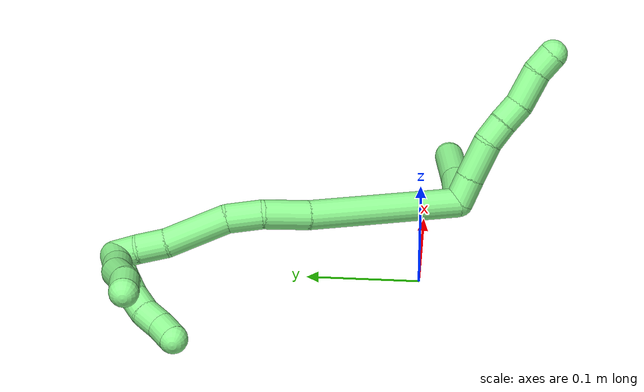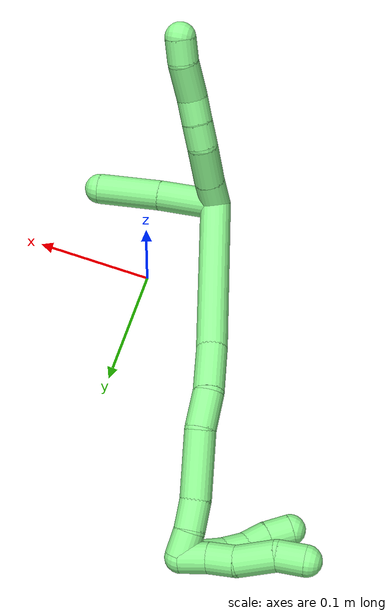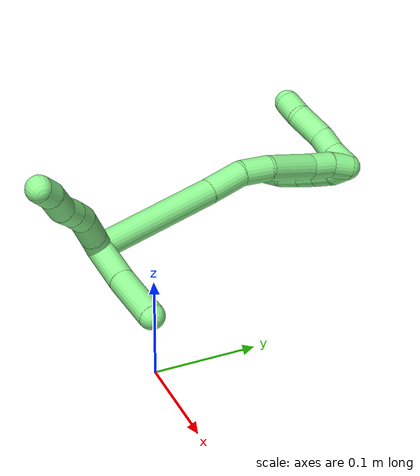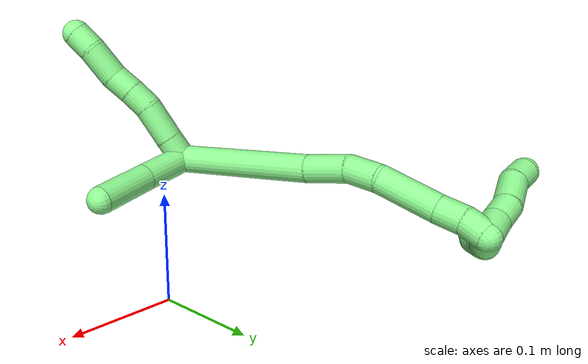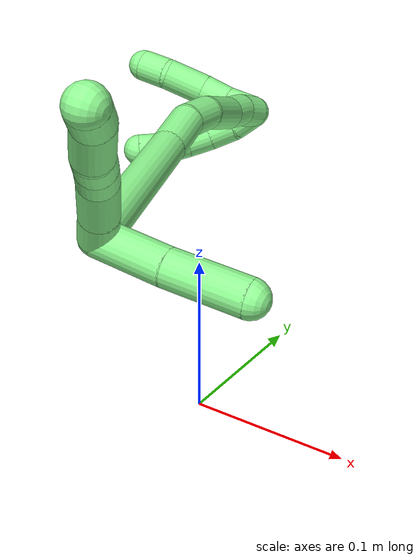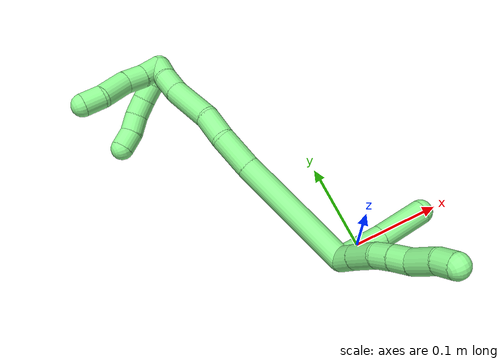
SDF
<sdf version="1.7">
 <world name="default">
  <model name="13">
   <static>0</static>
   <link name="13">
    <collision name="collision-cylinder-e_1_2_8">
     <pose>0.01119 0.002303 -0.002854 -2.46271 1.25413 -2.23472</pose>
     <geometry><cylinder><radius>0.0125</radius><length>0.023552</length></cylinder></geometry>
     <surface>
      <friction><ode><mu>1.16</mu><mu2>1.16</mu2><slip1>0</slip1><slip2>0</slip2></ode></friction>
      <contact><ode><kp>1e+06</kp><kd>1</kd><max_vel>0</max_vel><min_depth>0.001</min_depth></ode></contact>
     </surface>
    </collision>
    <visual name="visual-cylinder-e_1_2_8">
     <pose>0.01119 0.002303 -0.002854 -2.46271 1.25413 -2.23472</pose>
     <geometry><cylinder><radius>0.0125</radius><length>0.023552</length></cylinder></geometry>
     <material><ambient>0.564706 0.984314 0.572549 1</ambient></material>
    </visual>
    <collision name="collision-cylinder-e_2_8_9">
     <pose>0.038786 0.007695 -0.009064 -2.39743 1.29957 -2.19267</pose>
     <geometry><cylinder><radius>0.0125</radius><length>0.034056</length></cylinder></geometry>
     <surface>
      <friction><ode><mu>1.16</mu><mu2>1.16</mu2><slip1>0</slip1><slip2>0</slip2></ode></friction>
      <contact><ode><kp>1e+06</kp><kd>1</kd><max_vel>0</max_vel><min_depth>0.001</min_depth></ode></contact>
     </surface>
    </collision>
    <visual name="visual-cylinder-e_2_8_9">
     <pose>0.038786 0.007695 -0.009064 -2.39743 1.29957 -2.19267</pose>
     <geometry><cylinder><radius>0.0125</radius><length>0.034056</length></cylinder></geometry>
     <material><ambient>0.564706 0.984314 0.572549 1</ambient></material>
    </visual>
    <collision name="collision-cylinder-e_3_9_10">
     <pose>0.065018 0.010227 -0.015514 2.9629 1.26115 2.89737</pose>
     <geometry><cylinder><radius>0.0125</radius><length>0.020633</length></cylinder></geometry>
     <surface>
      <friction><ode><mu>1.16</mu><mu2>1.16</mu2><slip1>0</slip1><slip2>0</slip2></ode></friction>
      <contact><ode><kp>1e+06</kp><kd>1</kd><max_vel>0</max_vel><min_depth>0.001</min_depth></ode></contact>
     </surface>
    </collision>
    <visual name="visual-cylinder-e_3_9_10">
     <pose>0.065018 0.010227 -0.015514 2.9629 1.26115 2.89737</pose>
     <geometry><cylinder><radius>0.0125</radius><length>0.020633</length></cylinder></geometry>
     <material><ambient>0.564706 0.984314 0.572549 1</ambient></material>
    </visual>
    <collision name="collision-cylinder-e_4_10_11">
     <pose>0.084576 0.008357 -0.021833 2.75567 1.22717 2.60032</pose>
     <geometry><cylinder><radius>0.0125</radius><length>0.020672</length></cylinder></geometry>
     <surface>
      <friction><ode><mu>1.16</mu><mu2>1.16</mu2><slip1>0</slip1><slip2>0</slip2></ode></friction>
      <contact><ode><kp>1e+06</kp><kd>1</kd><max_vel>0</max_vel><min_depth>0.001</min_depth></ode></contact>
     </surface>
    </collision>
    <visual name="visual-cylinder-e_4_10_11">
     <pose>0.084576 0.008357 -0.021833 2.75567 1.22717 2.60032</pose>
     <geometry><cylinder><radius>0.0125</radius><length>0.020672</length></cylinder></geometry>
     <material><ambient>0.564706 0.984314 0.572549 1</ambient></material>
    </visual>
    <collision name="collision-cylinder-e_5_11_12">
     <pose>0.109135 0.008955 -0.029225 -2.71183 1.27108 -2.56624</pose>
     <geometry><cylinder><radius>0.0125</radius><length>0.031038</length></cylinder></geometry>
     <surface>
      <friction><ode><mu>1.16</mu><mu2>1.16</mu2><slip1>0</slip1><slip2>0</slip2></ode></friction>
      <contact><ode><kp>1e+06</kp><kd>1</kd><max_vel>0</max_vel><min_depth>0.001</min_depth></ode></contact>
     </surface>
    </collision>
    <visual name="visual-cylinder-e_5_11_12">
     <pose>0.109135 0.008955 -0.029225 -2.71183 1.27108 -2.56624</pose>
     <geometry><cylinder><radius>0.0125</radius><length>0.031038</length></cylinder></geometry>
     <material><ambient>0.564706 0.984314 0.572549 1</ambient></material>
    </visual>
    <collision name="collision-cylinder-e_6_12_6">
     <pose>0.133692 0.009812 -0.03556 2.68997 1.32786 2.57042</pose>
     <geometry><cylinder><radius>0.0125</radius><length>0.020048</length></cylinder></geometry>
     <surface>
      <friction><ode><mu>1.16</mu><mu2>1.16</mu2><slip1>0</slip1><slip2>0</slip2></ode></friction>
      <contact><ode><kp>1e+06</kp><kd>1</kd><max_vel>0</max_vel><min_depth>0.001</min_depth></ode></contact>
     </surface>
    </collision>
    <visual name="visual-cylinder-e_6_12_6">
     <pose>0.133692 0.009812 -0.03556 2.68997 1.32786 2.57042</pose>
     <geometry><cylinder><radius>0.0125</radius><length>0.020048</length></cylinder></geometry>
     <material><ambient>0.564706 0.984314 0.572549 1</ambient></material>
    </visual>
    <collision name="collision-cylinder-e_1_2_13">
     <pose>-0.00089 -0.00014 -0.023936 3.13576 -0.037176 -2.83025</pose>
     <geometry><cylinder><radius>0.0125</radius><length>0.047906</length></cylinder></geometry>
     <surface>
      <friction><ode><mu>1.16</mu><mu2>1.16</mu2><slip1>0</slip1><slip2>0</slip2></ode></friction>
      <contact><ode><kp>1e+06</kp><kd>1</kd><max_vel>0</max_vel><min_depth>0.001</min_depth></ode></contact>
     </surface>
    </collision>
    <visual name="visual-cylinder-e_1_2_13">
     <pose>-0.00089 -0.00014 -0.023936 3.13576 -0.037176 -2.83025</pose>
     <geometry><cylinder><radius>0.0125</radius><length>0.047906</length></cylinder></geometry>
     <material><ambient>0.564706 0.984314 0.572549 1</ambient></material>
    </visual>
    <collision name="collision-cylinder-e_2_13_5">
     <pose>-0.003329 0.001128 -0.073835 -3.08744 -0.059467 1.6643</pose>
     <geometry><cylinder><radius>0.0125</radius><length>0.052094</length></cylinder></geometry>
     <surface>
      <friction><ode><mu>1.16</mu><mu2>1.16</mu2><slip1>0</slip1><slip2>0</slip2></ode></friction>
      <contact><ode><kp>1e+06</kp><kd>1</kd><max_vel>0</max_vel><min_depth>0.001</min_depth></ode></contact>
     </surface>
    </collision>
    <visual name="visual-cylinder-e_2_13_5">
     <pose>-0.003329 0.001128 -0.073835 -3.08744 -0.059467 1.6643</pose>
     <geometry><cylinder><radius>0.0125</radius><length>0.052094</length></cylinder></geometry>
     <material><ambient>0.564706 0.984314 0.572549 1</ambient></material>
    </visual>
    <collision name="collision-cylinder-e_1_2_14">
     <pose>-0.036509 0.05171 0.015714 -1.27578 -0.59412 0.446274</pose>
     <geometry><cylinder><radius>0.0125</radius><length>0.130441</length></cylinder></geometry>
     <surface>
      <friction><ode><mu>1.16</mu><mu2>1.16</mu2><slip1>0</slip1><slip2>0</slip2></ode></friction>
      <contact><ode><kp>1e+06</kp><kd>1</kd><max_vel>0</max_vel><min_depth>0.001</min_depth></ode></contact>
     </surface>
    </collision>
    <visual name="visual-cylinder-e_1_2_14">
     <pose>-0.036509 0.05171 0.015714 -1.27578 -0.59412 0.446274</pose>
     <geometry><cylinder><radius>0.0125</radius><length>0.130441</length></cylinder></geometry>
     <material><ambient>0.564706 0.984314 0.572549 1</ambient></material>
    </visual>
    <collision name="collision-cylinder-e_2_14_15">
     <pose>-0.08249 0.120052 0.03546 -1.33296 -0.505455 0.400796</pose>
     <geometry><cylinder><radius>0.0125</radius><length>0.039122</length></cylinder></geometry>
     <surface>
      <friction><ode><mu>1.16</mu><mu2>1.16</mu2><slip1>0</slip1><slip2>0</slip2></ode></friction>
      <contact><ode><kp>1e+06</kp><kd>1</kd><max_vel>0</max_vel><min_depth>0.001</min_depth></ode></contact>
     </surface>
    </collision>
    <visual name="visual-cylinder-e_2_14_15">
     <pose>-0.08249 0.120052 0.03546 -1.33296 -0.505455 0.400796</pose>
     <geometry><cylinder><radius>0.0125</radius><length>0.039122</length></cylinder></geometry>
     <material><ambient>0.564706 0.984314 0.572549 1</ambient></material>
    </visual>
    <collision name="collision-cylinder-e_3_15_16">
     <pose>-0.102365 0.147642 0.040078 -1.51735 -0.758828 0.722748</pose>
     <geometry><cylinder><radius>0.0125</radius><length>0.030241</length></cylinder></geometry>
     <surface>
      <friction><ode><mu>1.16</mu><mu2>1.16</mu2><slip1>0</slip1><slip2>0</slip2></ode></friction>
      <contact><ode><kp>1e+06</kp><kd>1</kd><max_vel>0</max_vel><min_depth>0.001</min_depth></ode></contact>
     </surface>
    </collision>
    <visual name="visual-cylinder-e_3_15_16">
     <pose>-0.102365 0.147642 0.040078 -1.51735 -0.758828 0.722748</pose>
     <geometry><cylinder><radius>0.0125</radius><length>0.030241</length></cylinder></geometry>
     <material><ambient>0.564706 0.984314 0.572549 1</ambient></material>
    </visual>
    <collision name="collision-cylinder-e_4_16_17">
     <pose>-0.13532 0.173164 0.044613 -1.30609 -0.981031 0.775729</pose>
     <geometry><cylinder><radius>0.0125</radius><length>0.054268</length></cylinder></geometry>
     <surface>
      <friction><ode><mu>1.16</mu><mu2>1.16</mu2><slip1>0</slip1><slip2>0</slip2></ode></friction>
      <contact><ode><kp>1e+06</kp><kd>1</kd><max_vel>0</max_vel><min_depth>0.001</min_depth></ode></contact>
     </surface>
    </collision>
    <visual name="visual-cylinder-e_4_16_17">
     <pose>-0.13532 0.173164 0.044613 -1.30609 -0.981031 0.775729</pose>
     <geometry><cylinder><radius>0.0125</radius><length>0.054268</length></cylinder></geometry>
     <material><ambient>0.564706 0.984314 0.572549 1</ambient></material>
    </visual>
    <collision name="collision-cylinder-e_5_17_18">
     <pose>-0.167116 0.1958 0.049033 -1.51238 -0.852319 0.809164</pose>
     <geometry><cylinder><radius>0.0125</radius><length>0.024564</length></cylinder></geometry>
     <surface>
      <friction><ode><mu>1.16</mu><mu2>1.16</mu2><slip1>0</slip1><slip2>0</slip2></ode></friction>
      <contact><ode><kp>1e+06</kp><kd>1</kd><max_vel>0</max_vel><min_depth>0.001</min_depth></ode></contact>
     </surface>
    </collision>
    <visual name="visual-cylinder-e_5_17_18">
     <pose>-0.167116 0.1958 0.049033 -1.51238 -0.852319 0.809164</pose>
     <geometry><cylinder><radius>0.0125</radius><length>0.024564</length></cylinder></geometry>
     <material><ambient>0.564706 0.984314 0.572549 1</ambient></material>
    </visual>
    <collision name="collision-cylinder-e_6_18_1">
     <pose>-0.185194 0.209749 0.048266 -1.77846 -0.97346 1.15601</pose>
     <geometry><cylinder><radius>0.0125</radius><length>0.021364</length></cylinder></geometry>
     <surface>
      <friction><ode><mu>1.16</mu><mu2>1.16</mu2><slip1>0</slip1><slip2>0</slip2></ode></friction>
      <contact><ode><kp>1e+06</kp><kd>1</kd><max_vel>0</max_vel><min_depth>0.001</min_depth></ode></contact>
     </surface>
    </collision>
    <visual name="visual-cylinder-e_6_18_1">
     <pose>-0.185194 0.209749 0.048266 -1.77846 -0.97346 1.15601</pose>
     <geometry><cylinder><radius>0.0125</radius><length>0.021364</length></cylinder></geometry>
     <material><ambient>0.564706 0.984314 0.572549 1</ambient></material>
    </visual>
    <collision name="collision-cylinder-e_1_1_19">
     <pose>-0.191695 0.214676 0.058131 0.085595 0.206212 0.008862</pose>
     <geometry><cylinder><radius>0.0125</radius><length>0.022772</length></cylinder></geometry>
     <surface>
      <friction><ode><mu>1.16</mu><mu2>1.16</mu2><slip1>0</slip1><slip2>0</slip2></ode></friction>
      <contact><ode><kp>1e+06</kp><kd>1</kd><max_vel>0</max_vel><min_depth>0.001</min_depth></ode></contact>
     </surface>
    </collision>
    <visual name="visual-cylinder-e_1_1_19">
     <pose>-0.191695 0.214676 0.058131 0.085595 0.206212 0.008862</pose>
     <geometry><cylinder><radius>0.0125</radius><length>0.022772</length></cylinder></geometry>
     <material><ambient>0.564706 0.984314 0.572549 1</ambient></material>
    </visual>
    <collision name="collision-cylinder-e_2_19_20">
     <pose>-0.187297 0.214484 0.08021 -0.069257 0.18571 -0.006452</pose>
     <geometry><cylinder><radius>0.0125</radius><length>0.022387</length></cylinder></geometry>
     <surface>
      <friction><ode><mu>1.16</mu><mu2>1.16</mu2><slip1>0</slip1><slip2>0</slip2></ode></friction>
      <contact><ode><kp>1e+06</kp><kd>1</kd><max_vel>0</max_vel><min_depth>0.001</min_depth></ode></contact>
     </surface>
    </collision>
    <visual name="visual-cylinder-e_2_19_20">
     <pose>-0.187297 0.214484 0.08021 -0.069257 0.18571 -0.006452</pose>
     <geometry><cylinder><radius>0.0125</radius><length>0.022387</length></cylinder></geometry>
     <material><ambient>0.564706 0.984314 0.572549 1</ambient></material>
    </visual>
    <collision name="collision-cylinder-e_3_20_21">
     <pose>-0.179141 0.213633 0.106203 0.106925 0.383182 0.020759</pose>
     <geometry><cylinder><radius>0.0125</radius><length>0.032572</length></cylinder></geometry>
     <surface>
      <friction><ode><mu>1.16</mu><mu2>1.16</mu2><slip1>0</slip1><slip2>0</slip2></ode></friction>
      <contact><ode><kp>1e+06</kp><kd>1</kd><max_vel>0</max_vel><min_depth>0.001</min_depth></ode></contact>
     </surface>
    </collision>
    <visual name="visual-cylinder-e_3_20_21">
     <pose>-0.179141 0.213633 0.106203 0.106925 0.383182 0.020759</pose>
     <geometry><cylinder><radius>0.0125</radius><length>0.032572</length></cylinder></geometry>
     <material><ambient>0.564706 0.984314 0.572549 1</ambient></material>
    </visual>
    <collision name="collision-cylinder-e_4_21_4">
     <pose>-0.172345 0.211966 0.132333 0.004979 0.063588 0.000158</pose>
     <geometry><cylinder><radius>0.0125</radius><length>0.02227</length></cylinder></geometry>
     <surface>
      <friction><ode><mu>1.16</mu><mu2>1.16</mu2><slip1>0</slip1><slip2>0</slip2></ode></friction>
      <contact><ode><kp>1e+06</kp><kd>1</kd><max_vel>0</max_vel><min_depth>0.001</min_depth></ode></contact>
     </surface>
    </collision>
    <visual name="visual-cylinder-e_4_21_4">
     <pose>-0.172345 0.211966 0.132333 0.004979 0.063588 0.000158</pose>
     <geometry><cylinder><radius>0.0125</radius><length>0.02227</length></cylinder></geometry>
     <material><ambient>0.564706 0.984314 0.572549 1</ambient></material>
    </visual>
    <collision name="collision-cylinder-e_1_1_22">
     <pose>-0.19694 0.208268 0.053137 0.877987 -0.295697 -0.139638</pose>
     <geometry><cylinder><radius>0.0125</radius><length>0.02</length></cylinder></geometry>
     <surface>
      <friction><ode><mu>1.16</mu><mu2>1.16</mu2><slip1>0</slip1><slip2>0</slip2></ode></friction>
      <contact><ode><kp>1e+06</kp><kd>1</kd><max_vel>0</max_vel><min_depth>0.001</min_depth></ode></contact>
     </surface>
    </collision>
    <visual name="visual-cylinder-e_1_1_22">
     <pose>-0.19694 0.208268 0.053137 0.877987 -0.295697 -0.139638</pose>
     <geometry><cylinder><radius>0.0125</radius><length>0.02</length></cylinder></geometry>
     <material><ambient>0.564706 0.984314 0.572549 1</ambient></material>
    </visual>
    <collision name="collision-cylinder-e_2_22_23">
     <pose>-0.201478 0.194468 0.066724 0.710906 -0.163078 -0.060654</pose>
     <geometry><cylinder><radius>0.0125</radius><length>0.02</length></cylinder></geometry>
     <surface>
      <friction><ode><mu>1.16</mu><mu2>1.16</mu2><slip1>0</slip1><slip2>0</slip2></ode></friction>
      <contact><ode><kp>1e+06</kp><kd>1</kd><max_vel>0</max_vel><min_depth>0.001</min_depth></ode></contact>
     </surface>
    </collision>
    <visual name="visual-cylinder-e_2_22_23">
     <pose>-0.201478 0.194468 0.066724 0.710906 -0.163078 -0.060654</pose>
     <geometry><cylinder><radius>0.0125</radius><length>0.02</length></cylinder></geometry>
     <material><ambient>0.564706 0.984314 0.572549 1</ambient></material>
    </visual>
    <collision name="collision-cylinder-e_3_23_24">
     <pose>-0.203175 0.1813 0.081598 0.738218 -0.007294 -0.002822</pose>
     <geometry><cylinder><radius>0.0125</radius><length>0.02</length></cylinder></geometry>
     <surface>
      <friction><ode><mu>1.16</mu><mu2>1.16</mu2><slip1>0</slip1><slip2>0</slip2></ode></friction>
      <contact><ode><kp>1e+06</kp><kd>1</kd><max_vel>0</max_vel><min_depth>0.001</min_depth></ode></contact>
     </surface>
    </collision>
    <visual name="visual-cylinder-e_3_23_24">
     <pose>-0.203175 0.1813 0.081598 0.738218 -0.007294 -0.002822</pose>
     <geometry><cylinder><radius>0.0125</radius><length>0.02</length></cylinder></geometry>
     <material><ambient>0.564706 0.984314 0.572549 1</ambient></material>
    </visual>
    <collision name="collision-cylinder-e_4_24_25">
     <pose>-0.201227 0.167324 0.095582 0.833008 0.20346 0.090258</pose>
     <geometry><cylinder><radius>0.0125</radius><length>0.02</length></cylinder></geometry>
     <surface>
      <friction><ode><mu>1.16</mu><mu2>1.16</mu2><slip1>0</slip1><slip2>0</slip2></ode></friction>
      <contact><ode><kp>1e+06</kp><kd>1</kd><max_vel>0</max_vel><min_depth>0.001</min_depth></ode></contact>
     </surface>
    </collision>
    <visual name="visual-cylinder-e_4_24_25">
     <pose>-0.201227 0.167324 0.095582 0.833008 0.20346 0.090258</pose>
     <geometry><cylinder><radius>0.0125</radius><length>0.02</length></cylinder></geometry>
     <material><ambient>0.564706 0.984314 0.572549 1</ambient></material>
    </visual>
    <collision name="collision-cylinder-e_5_25_3">
     <pose>-0.197185 0.15477 0.110401 0.572639 0.203532 0.060111</pose>
     <geometry><cylinder><radius>0.0125</radius><length>0.02</length></cylinder></geometry>
     <surface>
      <friction><ode><mu>1.16</mu><mu2>1.16</mu2><slip1>0</slip1><slip2>0</slip2></ode></friction>
      <contact><ode><kp>1e+06</kp><kd>1</kd><max_vel>0</max_vel><min_depth>0.001</min_depth></ode></contact>
     </surface>
    </collision>
    <visual name="visual-cylinder-e_5_25_3">
     <pose>-0.197185 0.15477 0.110401 0.572639 0.203532 0.060111</pose>
     <geometry><cylinder><radius>0.0125</radius><length>0.02</length></cylinder></geometry>
     <material><ambient>0.564706 0.984314 0.572549 1</ambient></material>
    </visual>
    <collision name="collision-sphere-3">
     <pose>-0.195164 0.149464 0.118632 0 -0 0</pose>
     <geometry><sphere><radius>0.0125</radius></sphere></geometry>
     <surface>
      <friction><ode><mu>1.16</mu><mu2>1.16</mu2><slip1>0</slip1><slip2>0</slip2></ode></friction>
      <contact><ode><kp>1e+06</kp><kd>1</kd><max_vel>0</max_vel><min_depth>0.001</min_depth></ode></contact>
     </surface>
    </collision>
    <visual name="visual-sphere-3">
     <pose>-0.195164 0.149464 0.118632 0 -0 0</pose>
     <geometry><sphere><radius>0.0125</radius></sphere></geometry>
     <material><ambient>0.564706 0.984314 0.572549 1</ambient></material>
    </visual>
    <collision name="collision-sphere-25">
     <pose>-0.199206 0.160077 0.10217 0 -0 0</pose>
     <geometry><sphere><radius>0.0125</radius></sphere></geometry>
     <surface>
      <friction><ode><mu>1.16</mu><mu2>1.16</mu2><slip1>0</slip1><slip2>0</slip2></ode></friction>
      <contact><ode><kp>1e+06</kp><kd>1</kd><max_vel>0</max_vel><min_depth>0.001</min_depth></ode></contact>
     </surface>
    </collision>
    <visual name="visual-sphere-25">
     <pose>-0.199206 0.160077 0.10217 0 -0 0</pose>
     <geometry><sphere><radius>0.0125</radius></sphere></geometry>
     <material><ambient>0.564706 0.984314 0.572549 1</ambient></material>
    </visual>
    <collision name="collision-sphere-24">
     <pose>-0.203248 0.174571 0.088994 0 -0 0</pose>
     <geometry><sphere><radius>0.0125</radius></sphere></geometry>
     <surface>
      <friction><ode><mu>1.16</mu><mu2>1.16</mu2><slip1>0</slip1><slip2>0</slip2></ode></friction>
      <contact><ode><kp>1e+06</kp><kd>1</kd><max_vel>0</max_vel><min_depth>0.001</min_depth></ode></contact>
     </surface>
    </collision>
    <visual name="visual-sphere-24">
     <pose>-0.203248 0.174571 0.088994 0 -0 0</pose>
     <geometry><sphere><radius>0.0125</radius></sphere></geometry>
     <material><ambient>0.564706 0.984314 0.572549 1</ambient></material>
    </visual>
    <collision name="collision-sphere-23">
     <pose>-0.203102 0.18803 0.074201 0 -0 0</pose>
     <geometry><sphere><radius>0.0125</radius></sphere></geometry>
     <surface>
      <friction><ode><mu>1.16</mu><mu2>1.16</mu2><slip1>0</slip1><slip2>0</slip2></ode></friction>
      <contact><ode><kp>1e+06</kp><kd>1</kd><max_vel>0</max_vel><min_depth>0.001</min_depth></ode></contact>
     </surface>
    </collision>
    <visual name="visual-sphere-23">
     <pose>-0.203102 0.18803 0.074201 0 -0 0</pose>
     <geometry><sphere><radius>0.0125</radius></sphere></geometry>
     <material><ambient>0.564706 0.984314 0.572549 1</ambient></material>
    </visual>
    <collision name="collision-sphere-22">
     <pose>-0.199855 0.200907 0.059247 0 -0 0</pose>
     <geometry><sphere><radius>0.0125</radius></sphere></geometry>
     <surface>
      <friction><ode><mu>1.16</mu><mu2>1.16</mu2><slip1>0</slip1><slip2>0</slip2></ode></friction>
      <contact><ode><kp>1e+06</kp><kd>1</kd><max_vel>0</max_vel><min_depth>0.001</min_depth></ode></contact>
     </surface>
    </collision>
    <visual name="visual-sphere-22">
     <pose>-0.199855 0.200907 0.059247 0 -0 0</pose>
     <geometry><sphere><radius>0.0125</radius></sphere></geometry>
     <material><ambient>0.564706 0.984314 0.572549 1</ambient></material>
    </visual>
    <collision name="collision-sphere-4">
     <pose>-0.171637 0.211911 0.143446 0 -0 0</pose>
     <geometry><sphere><radius>0.0125</radius></sphere></geometry>
     <surface>
      <friction><ode><mu>1.16</mu><mu2>1.16</mu2><slip1>0</slip1><slip2>0</slip2></ode></friction>
      <contact><ode><kp>1e+06</kp><kd>1</kd><max_vel>0</max_vel><min_depth>0.001</min_depth></ode></contact>
     </surface>
    </collision>
    <visual name="visual-sphere-4">
     <pose>-0.171637 0.211911 0.143446 0 -0 0</pose>
     <geometry><sphere><radius>0.0125</radius></sphere></geometry>
     <material><ambient>0.564706 0.984314 0.572549 1</ambient></material>
    </visual>
    <collision name="collision-sphere-21">
     <pose>-0.173053 0.212021 0.121221 0 -0 0</pose>
     <geometry><sphere><radius>0.0125</radius></sphere></geometry>
     <surface>
      <friction><ode><mu>1.16</mu><mu2>1.16</mu2><slip1>0</slip1><slip2>0</slip2></ode></friction>
      <contact><ode><kp>1e+06</kp><kd>1</kd><max_vel>0</max_vel><min_depth>0.001</min_depth></ode></contact>
     </surface>
    </collision>
    <visual name="visual-sphere-21">
     <pose>-0.173053 0.212021 0.121221 0 -0 0</pose>
     <geometry><sphere><radius>0.0125</radius></sphere></geometry>
     <material><ambient>0.564706 0.984314 0.572549 1</ambient></material>
    </visual>
    <collision name="collision-sphere-20">
     <pose>-0.18523 0.215245 0.091184 0 -0 0</pose>
     <geometry><sphere><radius>0.0125</radius></sphere></geometry>
     <surface>
      <friction><ode><mu>1.16</mu><mu2>1.16</mu2><slip1>0</slip1><slip2>0</slip2></ode></friction>
      <contact><ode><kp>1e+06</kp><kd>1</kd><max_vel>0</max_vel><min_depth>0.001</min_depth></ode></contact>
     </surface>
    </collision>
    <visual name="visual-sphere-20">
     <pose>-0.18523 0.215245 0.091184 0 -0 0</pose>
     <geometry><sphere><radius>0.0125</radius></sphere></geometry>
     <material><ambient>0.564706 0.984314 0.572549 1</ambient></material>
    </visual>
    <collision name="collision-sphere-12">
     <pose>0.123962 0.010865 -0.03339 0 -0 0</pose>
     <geometry><sphere><radius>0.0125</radius></sphere></geometry>
     <surface>
      <friction><ode><mu>1.16</mu><mu2>1.16</mu2><slip1>0</slip1><slip2>0</slip2></ode></friction>
      <contact><ode><kp>1e+06</kp><kd>1</kd><max_vel>0</max_vel><min_depth>0.001</min_depth></ode></contact>
     </surface>
    </collision>
    <visual name="visual-sphere-12">
     <pose>0.123962 0.010865 -0.03339 0 -0 0</pose>
     <geometry><sphere><radius>0.0125</radius></sphere></geometry>
     <material><ambient>0.564706 0.984314 0.572549 1</ambient></material>
    </visual>
    <collision name="collision-sphere-11">
     <pose>0.094308 0.007046 -0.02506 0 -0 0</pose>
     <geometry><sphere><radius>0.0125</radius></sphere></geometry>
     <surface>
      <friction><ode><mu>1.16</mu><mu2>1.16</mu2><slip1>0</slip1><slip2>0</slip2></ode></friction>
      <contact><ode><kp>1e+06</kp><kd>1</kd><max_vel>0</max_vel><min_depth>0.001</min_depth></ode></contact>
     </surface>
    </collision>
    <visual name="visual-sphere-11">
     <pose>0.094308 0.007046 -0.02506 0 -0 0</pose>
     <geometry><sphere><radius>0.0125</radius></sphere></geometry>
     <material><ambient>0.564706 0.984314 0.572549 1</ambient></material>
    </visual>
    <collision name="collision-sphere-10">
     <pose>0.074844 0.009668 -0.018607 0 -0 0</pose>
     <geometry><sphere><radius>0.0125</radius></sphere></geometry>
     <surface>
      <friction><ode><mu>1.16</mu><mu2>1.16</mu2><slip1>0</slip1><slip2>0</slip2></ode></friction>
      <contact><ode><kp>1e+06</kp><kd>1</kd><max_vel>0</max_vel><min_depth>0.001</min_depth></ode></contact>
     </surface>
    </collision>
    <visual name="visual-sphere-10">
     <pose>0.074844 0.009668 -0.018607 0 -0 0</pose>
     <geometry><sphere><radius>0.0125</radius></sphere></geometry>
     <material><ambient>0.564706 0.984314 0.572549 1</ambient></material>
    </visual>
    <collision name="collision-sphere-9">
     <pose>0.055192 0.010785 -0.01242 0 -0 0</pose>
     <geometry><sphere><radius>0.0125</radius></sphere></geometry>
     <surface>
      <friction><ode><mu>1.16</mu><mu2>1.16</mu2><slip1>0</slip1><slip2>0</slip2></ode></friction>
      <contact><ode><kp>1e+06</kp><kd>1</kd><max_vel>0</max_vel><min_depth>0.001</min_depth></ode></contact>
     </surface>
    </collision>
    <visual name="visual-sphere-9">
     <pose>0.055192 0.010785 -0.01242 0 -0 0</pose>
     <geometry><sphere><radius>0.0125</radius></sphere></geometry>
     <material><ambient>0.564706 0.984314 0.572549 1</ambient></material>
    </visual>
    <collision name="collision-sphere-2">
     <geometry><sphere><radius>0.0125</radius></sphere></geometry>
     <surface>
      <friction><ode><mu>1.16</mu><mu2>1.16</mu2><slip1>0</slip1><slip2>0</slip2></ode></friction>
      <contact><ode><kp>1e+06</kp><kd>1</kd><max_vel>0</max_vel><min_depth>0.001</min_depth></ode></contact>
     </surface>
    </collision>
    <visual name="visual-sphere-2">
     <geometry><sphere><radius>0.0125</radius></sphere></geometry>
     <material><ambient>0.564706 0.984314 0.572549 1</ambient></material>
    </visual>
    <collision name="collision-sphere-19">
     <pose>-0.189364 0.213723 0.069235 0 -0 0</pose>
     <geometry><sphere><radius>0.0125</radius></sphere></geometry>
     <surface>
      <friction><ode><mu>1.16</mu><mu2>1.16</mu2><slip1>0</slip1><slip2>0</slip2></ode></friction>
      <contact><ode><kp>1e+06</kp><kd>1</kd><max_vel>0</max_vel><min_depth>0.001</min_depth></ode></contact>
     </surface>
    </collision>
    <visual name="visual-sphere-19">
     <pose>-0.189364 0.213723 0.069235 0 -0 0</pose>
     <geometry><sphere><radius>0.0125</radius></sphere></geometry>
     <material><ambient>0.564706 0.984314 0.572549 1</ambient></material>
    </visual>
    <collision name="collision-sphere-8">
     <pose>0.022381 0.004605 -0.005708 0 -0 0</pose>
     <geometry><sphere><radius>0.0125</radius></sphere></geometry>
     <surface>
      <friction><ode><mu>1.16</mu><mu2>1.16</mu2><slip1>0</slip1><slip2>0</slip2></ode></friction>
      <contact><ode><kp>1e+06</kp><kd>1</kd><max_vel>0</max_vel><min_depth>0.001</min_depth></ode></contact>
     </surface>
    </collision>
    <visual name="visual-sphere-8">
     <pose>0.022381 0.004605 -0.005708 0 -0 0</pose>
     <geometry><sphere><radius>0.0125</radius></sphere></geometry>
     <material><ambient>0.564706 0.984314 0.572549 1</ambient></material>
    </visual>
    <collision name="collision-sphere-6">
     <pose>0.143422 0.00876 -0.037729 0 -0 0</pose>
     <geometry><sphere><radius>0.0125</radius></sphere></geometry>
     <surface>
      <friction><ode><mu>1.16</mu><mu2>1.16</mu2><slip1>0</slip1><slip2>0</slip2></ode></friction>
      <contact><ode><kp>1e+06</kp><kd>1</kd><max_vel>0</max_vel><min_depth>0.001</min_depth></ode></contact>
     </surface>
    </collision>
    <visual name="visual-sphere-6">
     <pose>0.143422 0.00876 -0.037729 0 -0 0</pose>
     <geometry><sphere><radius>0.0125</radius></sphere></geometry>
     <material><ambient>0.564706 0.984314 0.572549 1</ambient></material>
    </visual>
    <collision name="collision-sphere-13">
     <pose>-0.001781 -0.000279 -0.047872 0 -0 0</pose>
     <geometry><sphere><radius>0.0125</radius></sphere></geometry>
     <surface>
      <friction><ode><mu>1.16</mu><mu2>1.16</mu2><slip1>0</slip1><slip2>0</slip2></ode></friction>
      <contact><ode><kp>1e+06</kp><kd>1</kd><max_vel>0</max_vel><min_depth>0.001</min_depth></ode></contact>
     </surface>
    </collision>
    <visual name="visual-sphere-13">
     <pose>-0.001781 -0.000279 -0.047872 0 -0 0</pose>
     <geometry><sphere><radius>0.0125</radius></sphere></geometry>
     <material><ambient>0.564706 0.984314 0.572549 1</ambient></material>
    </visual>
    <collision name="collision-sphere-5">
     <pose>-0.004877 0.002535 -0.099798 0 -0 0</pose>
     <geometry><sphere><radius>0.0125</radius></sphere></geometry>
     <surface>
      <friction><ode><mu>1.16</mu><mu2>1.16</mu2><slip1>0</slip1><slip2>0</slip2></ode></friction>
      <contact><ode><kp>1e+06</kp><kd>1</kd><max_vel>0</max_vel><min_depth>0.001</min_depth></ode></contact>
     </surface>
    </collision>
    <visual name="visual-sphere-5">
     <pose>-0.004877 0.002535 -0.099798 0 -0 0</pose>
     <geometry><sphere><radius>0.0125</radius></sphere></geometry>
     <material><ambient>0.564706 0.984314 0.572549 1</ambient></material>
    </visual>
    <collision name="collision-sphere-14">
     <pose>-0.073018 0.103419 0.031428 0 -0 0</pose>
     <geometry><sphere><radius>0.0125</radius></sphere></geometry>
     <surface>
      <friction><ode><mu>1.16</mu><mu2>1.16</mu2><slip1>0</slip1><slip2>0</slip2></ode></friction>
      <contact><ode><kp>1e+06</kp><kd>1</kd><max_vel>0</max_vel><min_depth>0.001</min_depth></ode></contact>
     </surface>
    </collision>
    <visual name="visual-sphere-14">
     <pose>-0.073018 0.103419 0.031428 0 -0 0</pose>
     <geometry><sphere><radius>0.0125</radius></sphere></geometry>
     <material><ambient>0.564706 0.984314 0.572549 1</ambient></material>
    </visual>
    <collision name="collision-sphere-15">
     <pose>-0.091961 0.136686 0.039492 0 -0 0</pose>
     <geometry><sphere><radius>0.0125</radius></sphere></geometry>
     <surface>
      <friction><ode><mu>1.16</mu><mu2>1.16</mu2><slip1>0</slip1><slip2>0</slip2></ode></friction>
      <contact><ode><kp>1e+06</kp><kd>1</kd><max_vel>0</max_vel><min_depth>0.001</min_depth></ode></contact>
     </surface>
    </collision>
    <visual name="visual-sphere-15">
     <pose>-0.091961 0.136686 0.039492 0 -0 0</pose>
     <geometry><sphere><radius>0.0125</radius></sphere></geometry>
     <material><ambient>0.564706 0.984314 0.572549 1</ambient></material>
    </visual>
    <collision name="collision-sphere-16">
     <pose>-0.112769 0.158598 0.040664 0 -0 0</pose>
     <geometry><sphere><radius>0.0125</radius></sphere></geometry>
     <surface>
      <friction><ode><mu>1.16</mu><mu2>1.16</mu2><slip1>0</slip1><slip2>0</slip2></ode></friction>
      <contact><ode><kp>1e+06</kp><kd>1</kd><max_vel>0</max_vel><min_depth>0.001</min_depth></ode></contact>
     </surface>
    </collision>
    <visual name="visual-sphere-16">
     <pose>-0.112769 0.158598 0.040664 0 -0 0</pose>
     <geometry><sphere><radius>0.0125</radius></sphere></geometry>
     <material><ambient>0.564706 0.984314 0.572549 1</ambient></material>
    </visual>
    <collision name="collision-sphere-17">
     <pose>-0.15787 0.187729 0.048561 0 -0 0</pose>
     <geometry><sphere><radius>0.0125</radius></sphere></geometry>
     <surface>
      <friction><ode><mu>1.16</mu><mu2>1.16</mu2><slip1>0</slip1><slip2>0</slip2></ode></friction>
      <contact><ode><kp>1e+06</kp><kd>1</kd><max_vel>0</max_vel><min_depth>0.001</min_depth></ode></contact>
     </surface>
    </collision>
    <visual name="visual-sphere-17">
     <pose>-0.15787 0.187729 0.048561 0 -0 0</pose>
     <geometry><sphere><radius>0.0125</radius></sphere></geometry>
     <material><ambient>0.564706 0.984314 0.572549 1</ambient></material>
    </visual>
    <collision name="collision-sphere-18">
     <pose>-0.176362 0.203871 0.049505 0 -0 0</pose>
     <geometry><sphere><radius>0.0125</radius></sphere></geometry>
     <surface>
      <friction><ode><mu>1.16</mu><mu2>1.16</mu2><slip1>0</slip1><slip2>0</slip2></ode></friction>
      <contact><ode><kp>1e+06</kp><kd>1</kd><max_vel>0</max_vel><min_depth>0.001</min_depth></ode></contact>
     </surface>
    </collision>
    <visual name="visual-sphere-18">
     <pose>-0.176362 0.203871 0.049505 0 -0 0</pose>
     <geometry><sphere><radius>0.0125</radius></sphere></geometry>
     <material><ambient>0.564706 0.984314 0.572549 1</ambient></material>
    </visual>
    <collision name="collision-sphere-1">
     <pose>-0.194026 0.215628 0.047027 0 -0 0</pose>
     <geometry><sphere><radius>0.0125</radius></sphere></geometry>
     <surface>
      <friction><ode><mu>1.16</mu><mu2>1.16</mu2><slip1>0</slip1><slip2>0</slip2></ode></friction>
      <contact><ode><kp>1e+06</kp><kd>1</kd><max_vel>0</max_vel><min_depth>0.001</min_depth></ode></contact>
     </surface>
    </collision>
    <visual name="visual-sphere-1">
     <pose>-0.194026 0.215628 0.047027 0 -0 0</pose>
     <geometry><sphere><radius>0.0125</radius></sphere></geometry>
     <material><ambient>0.564706 0.984314 0.572549 1</ambient></material>
    </visual>
    <inertial>
     <pose>-0.072261 0.100417 0.025626 0 -0 0</pose>
     <mass>0.75</mass>
     <inertia>
      <ixx>0.000244</ixx>
      <ixy>0</ixy>
      <ixz>0</ixz>
      <iyy>0.000254</iyy>
      <iyz>0</iyz>
      <izz>-4.8e-05</izz>
     </inertia>
    </inertial>
   </link>
   <pose>-0.048889 -0.033609 0.117072 1.35336 -0.925453 -1.33525</pose>
  </model>
 </world>
</sdf>
